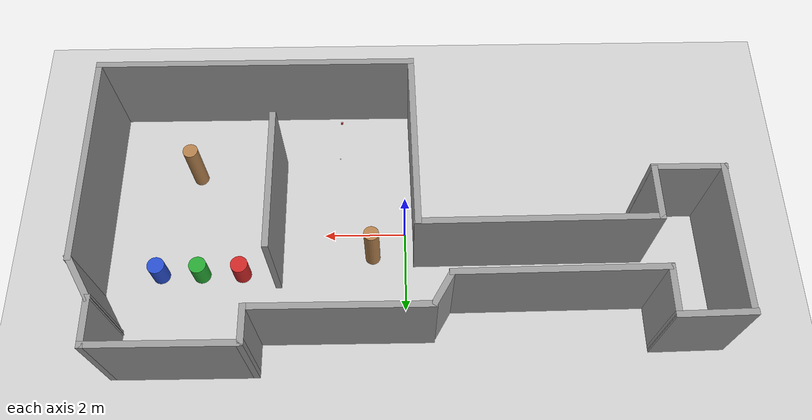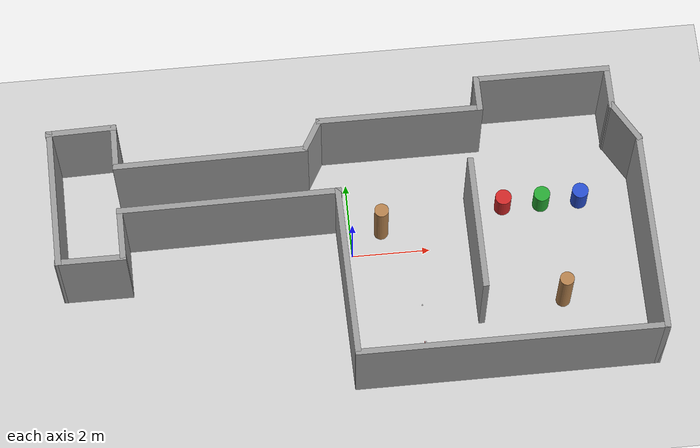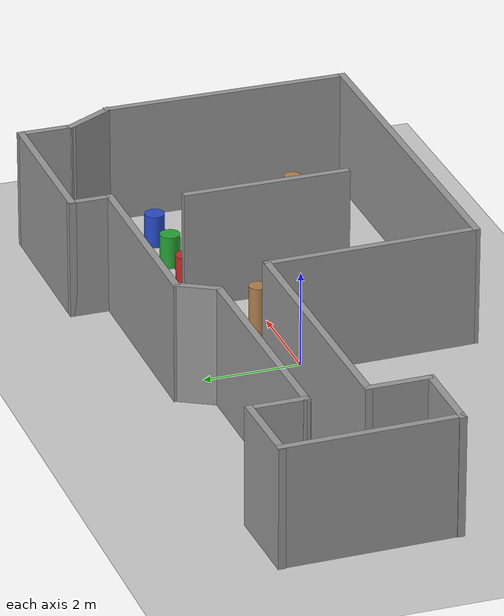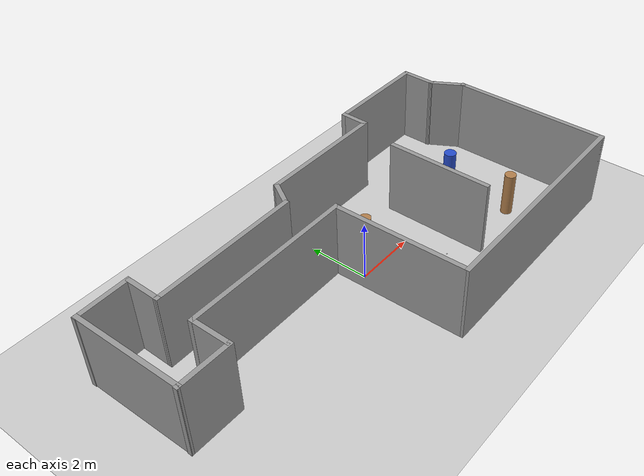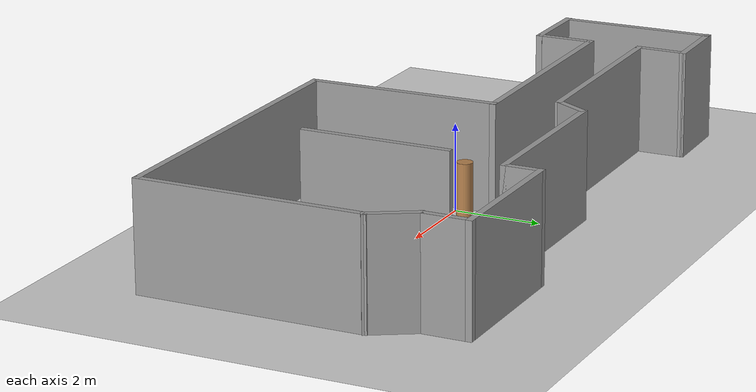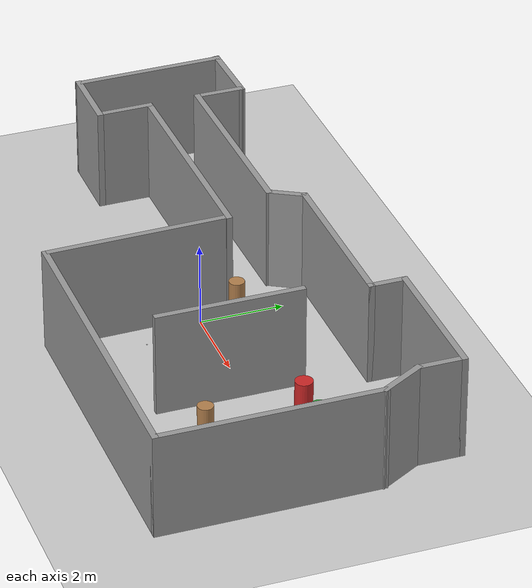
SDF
<sdf version="1.7">
 <world name="default">
  <plugin name="ros_link_attacher_plugin" filename="libgazebo_ros_link_attacher.so"/>
  <light name="sun" type="directional">
   <pose>0 0 10 0 -0 0</pose>
   <diffuse>0.8 0.8 0.8 1</diffuse>
   <specular>0.1 0.1 0.1 1</specular>
   <attenuation>
    <range>1000</range>
    <constant>0.9</constant>
    <linear>0.01</linear>
    <quadratic>0.001</quadratic>
   </attenuation>
   <direction>-0.5 0.5 -1</direction>
   <spot><inner_angle>0</inner_angle><outer_angle>0</outer_angle><falloff>0</falloff></spot>
  </light>
  <model name="ground_plane">
   <static>1</static>
   <link name="link">
    <collision name="collision">
     <geometry><plane><normal>0 0 1</normal><size>100 100</size></plane></geometry>
     <surface><friction><ode><mu>100</mu><mu2>50</mu2></ode></friction></surface>
    </collision>
    <visual name="visual">
     <cast_shadows>0</cast_shadows>
     <geometry><plane><normal>0 0 1</normal><size>100 100</size></plane></geometry>
     <material>
      <script><uri>file://media/materials/scripts/gazebo.material</uri><name>Gazebo/Grey</name></script>
     </material>
    </visual>
   </link>
  </model>
  <gravity>0 0 -9.8</gravity>
  <magnetic_field>6e-06 2.3e-05 -4.2e-05</magnetic_field>
  <atmosphere type="adiabatic"/>
  <physics name="default_physics" default="0" type="ode">
   <max_step_size>0.001</max_step_size>
   <real_time_factor>1</real_time_factor>
   <real_time_update_rate>1000</real_time_update_rate>
  </physics>
  <scene><ambient>0.4 0.4 0.4 1</ambient><background>0.7 0.7 0.7 1</background><shadows>1</shadows></scene>
  <spherical_coordinates>
   <surface_model>EARTH_WGS84</surface_model>
   <latitude_deg>0</latitude_deg>
   <longitude_deg>0</longitude_deg>
   <elevation>0</elevation>
   <heading_deg>0</heading_deg>
  </spherical_coordinates>
  <audio><device>default</device></audio>
  <model name="room_walls">
   <link name="Wall_1">
    <collision name="Wall_1_Collision">
     <geometry><box><size>1.2 0.15 2.5</size></box></geometry>
     <pose>0 0 1.25 0 -0 0</pose>
    </collision>
    <visual name="Wall_1_Visual">
     <pose>0 0 1.25 0 -0 0</pose>
     <geometry><box><size>1.2 0.15 2.5</size></box></geometry>
     <material>
      <script><uri>file://media/materials/scripts/gazebo.material</uri><name>Gazebo/Grey</name></script>
      <ambient>1 1 1 1</ambient>
     </material>
     <meta><layer>0</layer></meta>
    </visual>
    <pose>-5.79107 2.49368 0 0 -0 1.5708</pose>
   </link>
   <link name="Wall_2">
    <collision name="Wall_2_Collision">
     <geometry><box><size>1.79256 0.15 2.5</size></box></geometry>
     <pose>0 0 1.25 0 -0 0</pose>
    </collision>
    <visual name="Wall_2_Visual">
     <pose>0 0 1.25 0 -0 0</pose>
     <geometry><box><size>1.79256 0.15 2.5</size></box></geometry>
     <material>
      <script><uri>file://media/materials/scripts/gazebo.material</uri><name>Gazebo/Grey</name></script>
      <ambient>1 1 1 1</ambient>
     </material>
     <meta><layer>0</layer></meta>
    </visual>
    <pose>-6.61216 3.04631 0 0 -0 -3.1203</pose>
   </link>
   <link name="Wall_3">
    <collision name="Wall_3_Collision">
     <geometry><box><size>3.68565 0.15 2.5</size></box></geometry>
     <pose>0 0 1.25 0 -0 0</pose>
    </collision>
    <visual name="Wall_3_Visual">
     <pose>0 0 1.25 0 -0 0</pose>
     <geometry><box><size>3.68565 0.15 2.5</size></box></geometry>
     <material>
      <script><uri>file://media/materials/scripts/gazebo.material</uri><name>Gazebo/Grey</name></script>
      <ambient>1 1 1 1</ambient>
     </material>
     <meta><layer>0</layer></meta>
    </visual>
    <pose>-7.38434 1.26123 0 0 -0 -1.5545</pose>
   </link>
   <link name="Wall_4">
    <collision name="Wall_4_Collision">
     <geometry><box><size>1.77744 0.15 2.5</size></box></geometry>
     <pose>0 0 1.25 0 -0 0</pose>
    </collision>
    <visual name="Wall_4_Visual">
     <pose>0 0 1.25 0 -0 0</pose>
     <geometry><box><size>1.77744 0.15 2.5</size></box></geometry>
     <material>
      <script><uri>file://media/materials/scripts/gazebo.material</uri><name>Gazebo/Grey</name></script>
      <ambient>1 1 1 1</ambient>
     </material>
     <meta><layer>0</layer></meta>
    </visual>
    <pose>-6.56193 -0.508986 0 0 -0 -0.003224</pose>
   </link>
   <link name="Wall_5">
    <collision name="Wall_5_Collision">
     <geometry><box><size>1.35672 0.15 2.5</size></box></geometry>
     <pose>0 0 1.25 0 -0 0</pose>
    </collision>
    <visual name="Wall_5_Visual">
     <pose>0 0 1.25 0 -0 0</pose>
     <geometry><box><size>1.35672 0.15 2.5</size></box></geometry>
     <material>
      <script><uri>file://media/materials/scripts/gazebo.material</uri><name>Gazebo/Grey</name></script>
      <ambient>1 1 1 1</ambient>
     </material>
     <meta><layer>0</layer></meta>
    </visual>
    <pose>-5.75827 0.136795 0 0 -0 1.5846</pose>
   </link>
   <link name="Wall_6">
    <collision name="Wall_6_Collision">
     <geometry><box><size>5.64664 0.15 2.5</size></box></geometry>
     <pose>0 0 1.25 0 -0 0</pose>
    </collision>
    <visual name="Wall_6_Visual">
     <pose>0 0 1.25 0 -0 0</pose>
     <geometry><box><size>5.64664 0.15 2.5</size></box></geometry>
     <material>
      <script><uri>file://media/materials/scripts/gazebo.material</uri><name>Gazebo/Grey</name></script>
      <ambient>1 1 1 1</ambient>
     </material>
     <meta><layer>0</layer></meta>
    </visual>
    <pose>-3.02009 0.766397 0 0 -0 0.007796</pose>
   </link>
   <link name="Wall_7">
    <collision name="Wall_7_Collision">
     <geometry><box><size>4.38998 0.15 2.5</size></box></geometry>
     <pose>0 0 1.25 0 -0 0</pose>
    </collision>
    <visual name="Wall_7_Visual">
     <pose>0 0 1.25 0 -0 0</pose>
     <geometry><box><size>4.38998 0.15 2.5</size></box></geometry>
     <material>
      <script><uri>file://media/materials/scripts/gazebo.material</uri><name>Gazebo/Grey</name></script>
      <ambient>1 1 1 1</ambient>
     </material>
     <meta><layer>0</layer></meta>
    </visual>
    <pose>-0.242291 -1.34162 0 0 -0 -1.54891</pose>
   </link>
   <link name="Wall_8">
    <collision name="Wall_8_Collision">
     <geometry><box><size>7.75 0.15 2.5</size></box></geometry>
     <pose>0 0 1.25 0 -0 0</pose>
    </collision>
    <visual name="Wall_8_Visual">
     <pose>0 0 1.25 0 -0 0</pose>
     <geometry><box><size>7.75 0.15 2.5</size></box></geometry>
     <material>
      <script><uri>file://media/materials/scripts/gazebo.material</uri><name>Gazebo/Grey</name></script>
      <ambient>1 1 1 1</ambient>
     </material>
     <meta><layer>0</layer></meta>
    </visual>
    <pose>3.60739 -3.55107 0 0 -0 0</pose>
   </link>
   <link name="Wall_9">
    <collision name="Wall_9_Collision">
     <geometry><box><size>5.25 0.15 2.5</size></box></geometry>
     <pose>0 0 1.25 0 -0 0</pose>
    </collision>
    <visual name="Wall_9_Visual">
     <pose>0 0 1.25 0 -0 0</pose>
     <geometry><box><size>5.25 0.15 2.5</size></box></geometry>
     <material>
      <script><uri>file://media/materials/scripts/gazebo.material</uri><name>Gazebo/Grey</name></script>
      <ambient>1 1 1 1</ambient>
     </material>
     <meta><layer>0</layer></meta>
    </visual>
    <pose>7.40739 -1.00107 0 0 -0 1.5708</pose>
   </link>
   <link name="Wall_10">
    <collision name="Wall_10_Collision">
     <geometry><box><size>1.25 0.15 2.5</size></box></geometry>
     <pose>0 0 1.25 0 -0 0</pose>
    </collision>
    <visual name="Wall_10_Visual">
     <pose>0 0 1.25 0 -0 0</pose>
     <geometry><box><size>1.25 0.15 2.5</size></box></geometry>
     <material>
      <script><uri>file://media/materials/scripts/gazebo.material</uri><name>Gazebo/Grey</name></script>
      <ambient>1 1 1 1</ambient>
     </material>
     <meta><layer>0</layer></meta>
    </visual>
    <pose>7.13239 2.02524 0 0 -0 2.0944</pose>
   </link>
   <link name="Wall_11">
    <collision name="Wall_11_Collision">
     <geometry><box><size>1.20114 0.15 2.5</size></box></geometry>
     <pose>0 0 1.25 0 -0 0</pose>
    </collision>
    <visual name="Wall_11_Visual">
     <pose>0 0 1.25 0 -0 0</pose>
     <geometry><box><size>1.20114 0.15 2.5</size></box></geometry>
     <material>
      <script><uri>file://media/materials/scripts/gazebo.material</uri><name>Gazebo/Grey</name></script>
      <ambient>1 1 1 1</ambient>
     </material>
     <meta><layer>0</layer></meta>
    </visual>
    <pose>6.85739 3.02713 0 0 -0 1.5708</pose>
   </link>
   <link name="Wall_12">
    <collision name="Wall_12_Collision">
     <geometry><box><size>3.5 0.15 2.5</size></box></geometry>
     <pose>0 0 1.25 0 -0 0</pose>
    </collision>
    <visual name="Wall_12_Visual">
     <pose>0 0 1.25 0 -0 0</pose>
     <geometry><box><size>3.5 0.15 2.5</size></box></geometry>
     <material>
      <script><uri>file://media/materials/scripts/gazebo.material</uri><name>Gazebo/Grey</name></script>
      <ambient>1 1 1 1</ambient>
     </material>
     <meta><layer>0</layer></meta>
    </visual>
    <pose>5.18239 3.55269 0 0 -0 3.14159</pose>
   </link>
   <link name="Wall_13">
    <collision name="Wall_13_Collision">
     <geometry><box><size>0.951136 0.15 2.5</size></box></geometry>
     <pose>0 0 1.25 0 -0 0</pose>
    </collision>
    <visual name="Wall_13_Visual">
     <pose>0 0 1.25 0 -0 0</pose>
     <geometry><box><size>0.951136 0.15 2.5</size></box></geometry>
     <material>
      <script><uri>file://media/materials/scripts/gazebo.material</uri><name>Gazebo/Grey</name></script>
      <ambient>1 1 1 1</ambient>
     </material>
     <meta><layer>0</layer></meta>
    </visual>
    <pose>3.50739 3.15213 0 0 -0 -1.5708</pose>
   </link>
   <link name="Wall_14">
    <collision name="Wall_14_Collision">
     <geometry><box><size>4.25 0.15 2.5</size></box></geometry>
     <pose>0 0 1.25 0 -0 0</pose>
    </collision>
    <visual name="Wall_14_Visual">
     <pose>0 0 1.25 0 -0 0</pose>
     <geometry><box><size>4.25 0.15 2.5</size></box></geometry>
     <material>
      <script><uri>file://media/materials/scripts/gazebo.material</uri><name>Gazebo/Grey</name></script>
      <ambient>1 1 1 1</ambient>
     </material>
     <meta><layer>0</layer></meta>
    </visual>
    <pose>1.45739 2.75156 0 0 -0 3.14159</pose>
   </link>
   <link name="Wall_15">
    <collision name="Wall_15_Collision">
     <geometry><box><size>0.9 0.15 2.5</size></box></geometry>
     <pose>0 0 1.25 0 -0 0</pose>
    </collision>
    <visual name="Wall_15_Visual">
     <pose>0 0 1.25 0 -0 0</pose>
     <geometry><box><size>0.9 0.15 2.5</size></box></geometry>
     <material>
      <script><uri>file://media/materials/scripts/gazebo.material</uri><name>Gazebo/Grey</name></script>
      <ambient>1 1 1 1</ambient>
     </material>
     <meta><layer>0</layer></meta>
    </visual>
    <pose>-0.805112 2.3835 0 0 -0 -2.0944</pose>
   </link>
   <link name="Wall_16">
    <collision name="Wall_16_Collision">
     <geometry><box><size>4.92373 0.15 2.5</size></box></geometry>
     <pose>0 0 1.25 0 -0 0</pose>
    </collision>
    <visual name="Wall_16_Visual">
     <pose>0 0 1.25 0 -0 0</pose>
     <geometry><box><size>4.92373 0.15 2.5</size></box></geometry>
     <material>
      <script><uri>file://media/materials/scripts/gazebo.material</uri><name>Gazebo/Grey</name></script>
      <ambient>1 1 1 1</ambient>
     </material>
     <meta><layer>0</layer></meta>
    </visual>
    <pose>-3.40434 1.98962 0 0 -0 -3.13077</pose>
   </link>
   <link name="Wall_17">
    <collision name="Wall_17_Collision">
     <geometry><box><size>3.5 0.15 2.5</size></box></geometry>
     <pose>0 0 1.25 0 -0 0</pose>
    </collision>
    <visual name="Wall_17_Visual">
     <pose>0 0 1.25 0 -0 0</pose>
     <geometry><box><size>3.5 0.15 2.5</size></box></geometry>
     <material>
      <script><uri>file://media/materials/scripts/gazebo.material</uri><name>Gazebo/Grey</name></script>
      <ambient>1 1 1 1</ambient>
     </material>
     <meta><layer>0</layer></meta>
    </visual>
    <pose>3.10875 -0.378342 0 0 -0 -1.5708</pose>
   </link>
   <static>1</static>
  </model>
  <model name="construction_cone_1">
   <pose>5.25449 -1.69935 0.728545 0 -0 4.1e-05</pose>
   <link name="link">
    <inertial>
     <mass>1</mass>
     <inertia><ixx>0.145833</ixx><ixy>0</ixy><ixz>0</ixz><iyy>0.145833</iyy><iyz>0</iyz><izz>0.125</izz></inertia>
    </inertial>
    <collision name="collision">
     <geometry><cylinder><radius>0.183096</radius><length>1.4571</length></cylinder></geometry>
    </collision>
    <visual name="visual">
     <geometry><cylinder><radius>0.183096</radius><length>1.4571</length></cylinder></geometry>
     <material>
      <script><name>Gazebo/Wood</name><uri>file://media/materials/scripts/gazebo.material</uri></script>
     </material>
    </visual>
   </link>
  </model>
  <model name="construction_cone_4">
   <pose>0.801072 0.601632 0.728546 0 -0 5.3e-05</pose>
   <link name="link">
    <inertial>
     <mass>1</mass>
     <inertia><ixx>0.145833</ixx><ixy>0</ixy><ixz>0</ixz><iyy>0.145833</iyy><iyz>0</iyz><izz>0.125</izz></inertia>
    </inertial>
    <collision name="collision">
     <geometry><cylinder><radius>0.183096</radius><length>1.4571</length></cylinder></geometry>
    </collision>
    <visual name="visual">
     <geometry><cylinder><radius>0.183096</radius><length>1.4571</length></cylinder></geometry>
     <material>
      <script><name>Gazebo/Wood</name><uri>file://media/materials/scripts/gazebo.material</uri></script>
     </material>
    </visual>
   </link>
  </model>
  <model name="tag10">
   <pose>1.6 -1.8 0.776 0 -0 1.57</pose>
   <link name="tag_10_link">
    <inertial>
     <mass>0.7</mass>
     <inertia>
      <ixx>0.00016667</ixx>
      <ixy>0</ixy>
      <ixz>0</ixz>
      <iyy>0.00016667</iyy>
      <iyz>0</iyz>
      <izz>0.00016667</izz>
     </inertia>
    </inertial>
    <collision name="collision"><geometry><box><size>0.0325 0.0325 0.0001</size></box></geometry></collision>
    <visual name="visual">
     <cast_shadows>0</cast_shadows>
     <geometry><box><size>0.0325 0.0325 0.0001</size></box></geometry>
     <material>
      <script>
       <uri>model://artag/materials/scripts</uri>
       <uri>model://artag/materials/textures</uri>
       <name>material/artag10</name>
      </script>
     </material>
    </visual>
    <inertial>
     <inertia><ixx>0.0001</ixx><ixy>0</ixy><ixz>0</ixz><iyy>0.0001</iyy><iyz>0</iyz><izz>0.0001</izz></inertia>
     <mass>0.1</mass>
    </inertial>
   </link>
   <static>1</static>
  </model>
  <model name="place_table_r">
   <static>1</static>
   <pose>4.0074 1.01597 0.345 0 -0 0</pose>
   <link name="link">
    <inertial>
     <mass>1</mass>
     <inertia><ixx>0.145833</ixx><ixy>0</ixy><ixz>0</ixz><iyy>0.145833</iyy><iyz>0</iyz><izz>0.125</izz></inertia>
    </inertial>
    <collision name="collision">
     <geometry><cylinder><radius>0.21</radius><length>0.69</length></cylinder></geometry>
    </collision>
    <visual name="visual">
     <geometry><cylinder><radius>0.21</radius><length>0.69</length></cylinder></geometry>
     <material>
      <script><name>Gazebo/Red</name><uri>file://media/materials/scripts/gazebo.material</uri></script>
     </material>
    </visual>
   </link>
  </model>
  <model name="place_table_g">
   <static>1</static>
   <pose>5.0074 1.01597 0.345 0 -0 0</pose>
   <link name="link">
    <inertial>
     <mass>1</mass>
     <inertia><ixx>0.145833</ixx><ixy>0</ixy><ixz>0</ixz><iyy>0.145833</iyy><iyz>0</iyz><izz>0.125</izz></inertia>
    </inertial>
    <collision name="collision">
     <geometry><cylinder><radius>0.21</radius><length>0.69</length></cylinder></geometry>
    </collision>
    <visual name="visual">
     <geometry><cylinder><radius>0.21</radius><length>0.69</length></cylinder></geometry>
     <material>
      <script><name>Gazebo/Green</name><uri>file://media/materials/scripts/gazebo.material</uri></script>
     </material>
    </visual>
   </link>
  </model>
  <model name="place_table_b">
   <static>1</static>
   <pose>6.00715 1.01597 0.345 0 -0 0</pose>
   <link name="link">
    <inertial>
     <mass>1</mass>
     <inertia><ixx>0.145833</ixx><ixy>0</ixy><ixz>0</ixz><iyy>0.145833</iyy><iyz>0</iyz><izz>0.125</izz></inertia>
    </inertial>
    <collision name="collision">
     <geometry><cylinder><radius>0.21</radius><length>0.69</length></cylinder></geometry>
    </collision>
    <visual name="visual">
     <geometry><cylinder><radius>0.21</radius><length>0.69</length></cylinder></geometry>
     <material>
      <script><name>Gazebo/Blue</name><uri>file://media/materials/scripts/gazebo.material</uri></script>
     </material>
    </visual>
   </link>
  </model>
  <model name="cube">
   <pose>1.57976 -2.82845 0.827682 0 3.4e-05 -0.060509</pose>
   <link name="cube_link">
    <inertial>
     <mass>0.7</mass>
     <inertia>
      <ixx>0.00016667</ixx>
      <ixy>0</ixy>
      <ixz>0</ixz>
      <iyy>0.00016667</iyy>
      <iyz>0</iyz>
      <izz>0.00016667</izz>
     </inertia>
    </inertial>
    <collision name="collision"><geometry><box><size>0.05 0.05 0.05</size></box></geometry></collision>
    <visual name="visual">
     <geometry><box><size>0.05 0.05 0.05</size></box></geometry>
     <material>
      <script><name>Gazebo/Red</name><uri>file://media/materials/scripts/gazebo.material</uri></script>
     </material>
    </visual>
   </link>
   <link name="tag4">
    <pose>0 0 0.025 0 -0 0</pose>
    <collision name="collision"><geometry><box><size>0.0325 0.0325 0.0001</size></box></geometry></collision>
    <visual name="visual">
     <cast_shadows>0</cast_shadows>
     <geometry><box><size>0.0325 0.0325 0.0001</size></box></geometry>
     <material>
      <script>
       <uri>model://artag/materials/scripts</uri>
       <uri>model://artag/materials/textures</uri>
       <name>material/artag4</name>
      </script>
     </material>
    </visual>
    <inertial>
     <inertia><ixx>0.0001</ixx><ixy>0</ixy><ixz>0</ixz><iyy>0.0001</iyy><iyz>0</iyz><izz>0.0001</izz></inertia>
     <mass>0.1</mass>
    </inertial>
   </link>
   <joint name="cube_tag4" type="fixed"><parent>cube_link</parent><child>tag4</child></joint>
  </model>
  <model name="cube_5">
   <pose>1.57976 -2.82845 0.827682 0 3.4e-05 -0.060509</pose>
   <link name="cube_5_link">
    <inertial>
     <mass>0.7</mass>
     <inertia>
      <ixx>0.00016667</ixx>
      <ixy>0</ixy>
      <ixz>0</ixz>
      <iyy>0.00016667</iyy>
      <iyz>0</iyz>
      <izz>0.00016667</izz>
     </inertia>
    </inertial>
    <collision name="collision"><geometry><box><size>0.05 0.05 0.05</size></box></geometry></collision>
    <visual name="visual">
     <geometry><box><size>0.05 0.05 0.05</size></box></geometry>
     <material>
      <script><name>Gazebo/Red</name><uri>file://media/materials/scripts/gazebo.material</uri></script>
     </material>
    </visual>
   </link>
   <link name="tag5">
    <pose>0 0 0.025 0 -0 0</pose>
    <collision name="collision"><geometry><box><size>0.0325 0.0325 0.0001</size></box></geometry></collision>
    <visual name="visual">
     <cast_shadows>0</cast_shadows>
     <geometry><box><size>0.0325 0.0325 0.0001</size></box></geometry>
     <material>
      <script>
       <uri>model://artag/materials/scripts</uri>
       <uri>model://artag/materials/textures</uri>
       <name>material/artag5</name>
      </script>
     </material>
    </visual>
    <inertial>
     <inertia><ixx>0.0001</ixx><ixy>0</ixy><ixz>0</ixz><iyy>0.0001</iyy><iyz>0</iyz><izz>0.0001</izz></inertia>
     <mass>0.1</mass>
    </inertial>
   </link>
   <joint name="cube_tag5" type="fixed"><parent>cube_5_link</parent><child>tag5</child></joint>
  </model>
  <model name="cube_6">
   <pose>1.57976 -2.82845 0.827682 0 3.4e-05 -0.060509</pose>
   <link name="cube_6_link">
    <inertial>
     <mass>0.7</mass>
     <inertia>
      <ixx>0.00016667</ixx>
      <ixy>0</ixy>
      <ixz>0</ixz>
      <iyy>0.00016667</iyy>
      <iyz>0</iyz>
      <izz>0.00016667</izz>
     </inertia>
    </inertial>
    <collision name="collision"><geometry><box><size>0.05 0.05 0.05</size></box></geometry></collision>
    <visual name="visual">
     <geometry><box><size>0.05 0.05 0.05</size></box></geometry>
     <material>
      <script><name>Gazebo/Red</name><uri>file://media/materials/scripts/gazebo.material</uri></script>
     </material>
    </visual>
   </link>
   <link name="tag6">
    <pose>0 0 0.025 0 -0 0</pose>
    <collision name="collision"><geometry><box><size>0.0325 0.0325 0.0001</size></box></geometry></collision>
    <visual name="visual">
     <cast_shadows>0</cast_shadows>
     <geometry><box><size>0.0325 0.0325 0.0001</size></box></geometry>
     <material>
      <script>
       <uri>model://artag/materials/scripts</uri>
       <uri>model://artag/materials/textures</uri>
       <name>material/artag6</name>
      </script>
     </material>
    </visual>
    <inertial>
     <inertia><ixx>0.0001</ixx><ixy>0</ixy><ixz>0</ixz><iyy>0.0001</iyy><iyz>0</iyz><izz>0.0001</izz></inertia>
     <mass>0.1</mass>
    </inertial>
   </link>
   <joint name="cube_tag6" type="fixed"><parent>cube_6_link</parent><child>tag6</child></joint>
  </model>
 </world>
</sdf>
